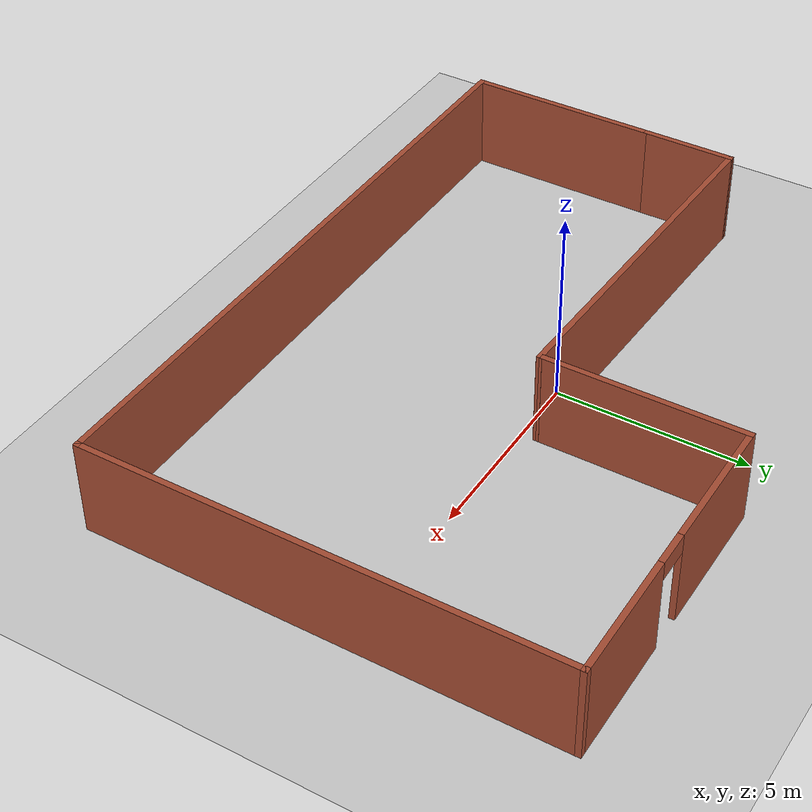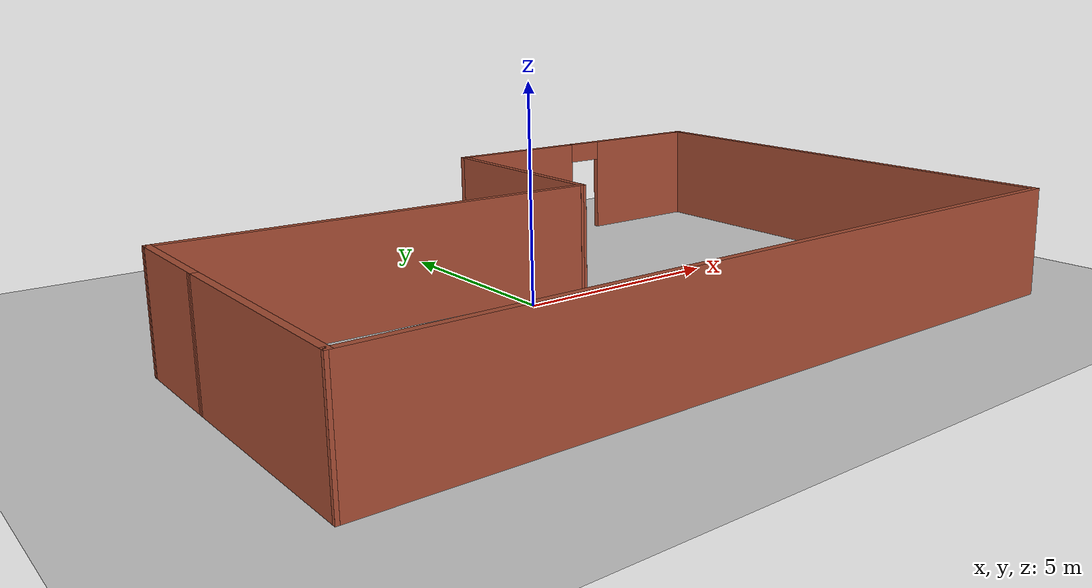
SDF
<sdf version="1.7">
 <world name="default">
  <plugin filename="gz-sim-physics-system" name="gz::sim::systems::Physics"/>
  <plugin filename="gz-sim-user-commands-system" name="gz::sim::systems::UserCommands"/>
  <plugin filename="gz-sim-scene-broadcaster-system" name="gz::sim::systems::SceneBroadcaster"/>
  <plugin filename="gz-sim-sensors-system" name="gz::sim::systems::Sensors">
   <render_engine>ogre2</render_engine>
  </plugin>
  <plugin filename="gz-sim-imu-system" name="gz::sim::systems::Imu"/>
  <light name="sun" type="directional">
   <pose>0 0 10 0 -0 0</pose>
   <diffuse>0.8 0.8 0.8 1</diffuse>
   <specular>0.2 0.2 0.2 1</specular>
   <attenuation>
    <range>1000</range>
    <constant>0.9</constant>
    <linear>0.01</linear>
    <quadratic>0.001</quadratic>
   </attenuation>
   <direction>-0.5 0.1 -0.9</direction>
   <spot><inner_angle>0</inner_angle><outer_angle>0</outer_angle><falloff>0</falloff></spot>
  </light>
  <model name="ground_plane">
   <static>1</static>
   <link name="link">
    <collision name="collision">
     <geometry><plane><normal>0 0 1</normal><size>100 100</size></plane></geometry>
     <surface>
      <contact><collide_bitmask>65535</collide_bitmask></contact>
      <friction><ode><mu>100</mu><mu2>50</mu2></ode></friction>
     </surface>
    </collision>
    <visual name="visual">
     <cast_shadows>0</cast_shadows>
     <geometry><plane><normal>0 0 1</normal><size>100 100</size></plane></geometry>
     <material>
      <script><uri>file://media/materials/scripts/gazebo.material</uri><name>Gazebo/Grey</name></script>
     </material>
    </visual>
   </link>
  </model>
  <gravity>0 0 -9.8</gravity>
  <magnetic_field>6e-06 2.3e-05 -4.2e-05</magnetic_field>
  <atmosphere type="adiabatic"/>
  <physics type="ode">
   <max_step_size>0.001</max_step_size>
   <real_time_factor>1</real_time_factor>
   <real_time_update_rate>1000</real_time_update_rate>
  </physics>
  <scene><ambient>0.4 0.4 0.4 1</ambient><background>0.7 0.7 0.7 1</background><shadows>1</shadows></scene>
  <audio><device>default</device></audio>
  <spherical_coordinates>
   <surface_model>EARTH_WGS84</surface_model>
   <latitude_deg>0</latitude_deg>
   <longitude_deg>0</longitude_deg>
   <elevation>0</elevation>
   <heading_deg>0</heading_deg>
  </spherical_coordinates>
  <model name="base.sdf">
   <pose>0.722097 -0.560636 0 0 -0 0</pose>
   <link name="Wall_10">
    <collision name="Wall_10_Collision">
     <geometry><box><size>5.25 0.15 2.5</size></box></geometry>
     <pose>0 0 1.25 0 -0 0</pose>
    </collision>
    <visual name="Wall_10_Visual">
     <pose>0 0 1.25 0 -0 0</pose>
     <geometry><box><size>5.25 0.15 2.5</size></box></geometry>
     <material>
      <script><uri>file://media/materials/scripts/gazebo.material</uri><name>Gazebo/Bricks</name></script>
      <ambient>1 1 1 1</ambient>
     </material>
     <meta><layer>0</layer></meta>
    </visual>
    <pose>0.959623 3.50012 0 0 -0 -1.5708</pose>
   </link>
   <link name="Wall_11">
    <collision name="Wall_11_Collision">
     <geometry><box><size>9.67279 0.15 2.5</size></box></geometry>
     <pose>0 0 1.25 0 -0 0</pose>
    </collision>
    <visual name="Wall_11_Visual">
     <pose>0 0 1.25 0 -0 0</pose>
     <geometry><box><size>9.67279 0.15 2.5</size></box></geometry>
     <material>
      <script><uri>file://media/materials/scripts/gazebo.material</uri><name>Gazebo/Bricks</name></script>
      <ambient>1 1 1 1</ambient>
     </material>
     <meta><layer>0</layer></meta>
    </visual>
    <pose>-3.79867 1.1219 0 0 -0 3.10551</pose>
   </link>
   <link name="Wall_3">
    <collision name="Wall_3_Collision">
     <geometry><box><size>2.5 0.15 2.5</size></box></geometry>
     <pose>0 0 1.25 0 -0 0</pose>
    </collision>
    <visual name="Wall_3_Visual">
     <pose>0 0 1.25 0 -0 0</pose>
     <geometry><box><size>2.5 0.15 2.5</size></box></geometry>
     <material>
      <script><uri>file://media/materials/scripts/gazebo.material</uri><name>Gazebo/Bricks</name></script>
      <ambient>1 1 1 1</ambient>
     </material>
     <meta><layer>0</layer></meta>
    </visual>
    <pose>-8.55697 0.118681 0 0 -0 -1.5708</pose>
   </link>
   <link name="Wall_6">
    <collision name="Wall_6_Collision">
     <geometry><box><size>5.14358 0.15 2.5</size></box></geometry>
     <pose>0 0 1.25 0 -0 0</pose>
    </collision>
    <visual name="Wall_6_Visual">
     <pose>0 0 1.25 0 -0 0</pose>
     <geometry><box><size>5.14358 0.15 2.5</size></box></geometry>
     <material>
      <script><uri>file://media/materials/scripts/gazebo.material</uri><name>Gazebo/Bricks</name></script>
      <ambient>1 1 1 1</ambient>
     </material>
     <meta><layer>0</layer></meta>
    </visual>
    <pose>-8.54867 -3.5531 0 0 -0 -1.56747</pose>
   </link>
   <link name="Wall_7">
    <collision name="Wall_7_Collision">
     <geometry><box><size>17.25 0.15 2.5</size></box></geometry>
     <pose>0 0 1.25 0 -0 0</pose>
    </collision>
    <visual name="Wall_7_Visual">
     <pose>0 0 1.25 0 -0 0</pose>
     <geometry><box><size>17.25 0.15 2.5</size></box></geometry>
     <material>
      <script><uri>file://media/materials/scripts/gazebo.material</uri><name>Gazebo/Bricks</name></script>
      <ambient>1 1 1 1</ambient>
     </material>
     <meta><layer>0</layer></meta>
    </visual>
    <pose>0.009623 -6.04988 0 0 -0 0</pose>
   </link>
   <link name="Wall_8">
    <collision name="Wall_8_Collision">
     <geometry><box><size>12.25 0.15 2.5</size></box></geometry>
     <pose>0 0 1.25 0 -0 0</pose>
    </collision>
    <visual name="Wall_8_Visual">
     <pose>0 0 1.25 0 -0 0</pose>
     <geometry><box><size>12.25 0.15 2.5</size></box></geometry>
     <material>
      <script><uri>file://media/materials/scripts/gazebo.material</uri><name>Gazebo/Bricks</name></script>
      <ambient>1 1 1 1</ambient>
     </material>
     <meta><layer>0</layer></meta>
    </visual>
    <pose>8.55962 0.000124 0 0 -0 1.5708</pose>
   </link>
   <link name="Wall_9">
    <pose>4.75962 6.05012 0 0 -0 3.14159</pose>
    <visual name="Wall_9_Visual_0">
     <pose>-2.22706 0 1.25 0 -0 0</pose>
     <geometry><box><size>3.29587 0.15 2.5</size></box></geometry>
     <material>
      <script><uri>file://media/materials/scripts/gazebo.material</uri><name>Gazebo/Bricks</name></script>
      <ambient>1 1 1 1</ambient>
     </material>
     <meta><layer>0</layer></meta>
    </visual>
    <collision name="Wall_9_Collision_0">
     <geometry><box><size>3.29587 0.15 2.5</size></box></geometry>
     <pose>-2.22706 0 1.25 0 -0 0</pose>
    </collision>
    <visual name="Wall_9_Visual_1">
     <pose>2.09794 0 1.25 0 -0 0</pose>
     <geometry><box><size>3.55413 0.15 2.5</size></box></geometry>
     <material>
      <script><uri>file://media/materials/scripts/gazebo.material</uri><name>Gazebo/Bricks</name></script>
      <ambient>1 1 1 1</ambient>
     </material>
     <meta><layer>0</layer></meta>
    </visual>
    <collision name="Wall_9_Collision_1">
     <geometry><box><size>3.55413 0.15 2.5</size></box></geometry>
     <pose>2.09794 0 1.25 0 -0 0</pose>
    </collision>
    <visual name="Wall_9_Visual_2">
     <pose>-0.129128 0 2.25 0 -0 0</pose>
     <geometry><box><size>0.9 0.15 0.5</size></box></geometry>
     <material>
      <script><uri>file://media/materials/scripts/gazebo.material</uri><name>Gazebo/Bricks</name></script>
      <ambient>1 1 1 1</ambient>
     </material>
     <meta><layer>0</layer></meta>
    </visual>
    <collision name="Wall_9_Collision_2">
     <geometry><box><size>0.9 0.15 0.5</size></box></geometry>
     <pose>-0.129128 0 2.25 0 -0 0</pose>
    </collision>
   </link>
   <static>1</static>
  </model>
 </world>
</sdf>
